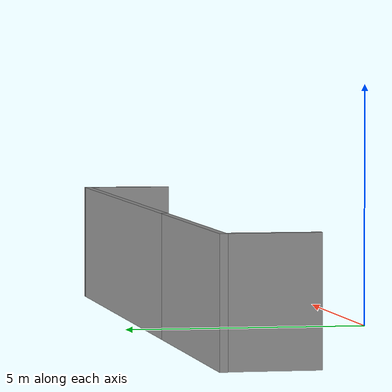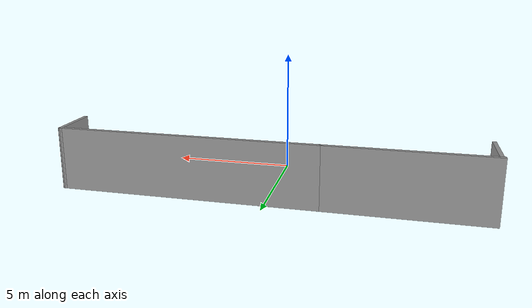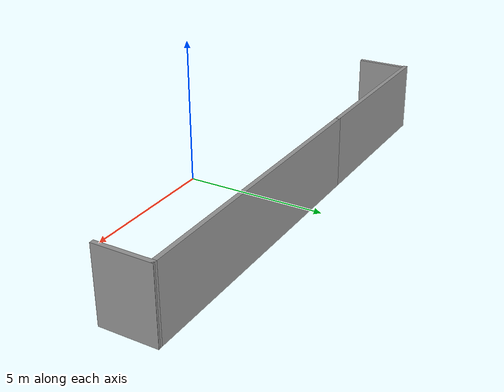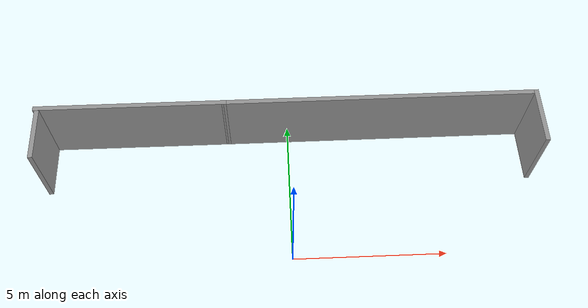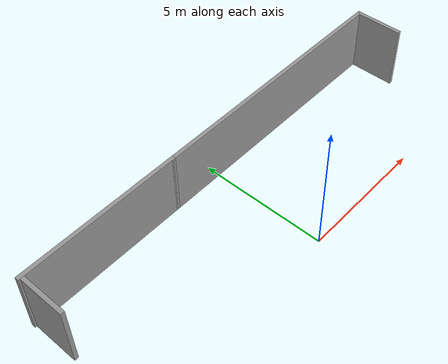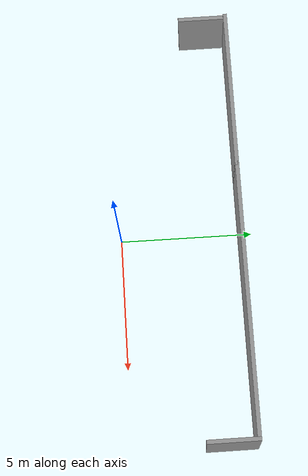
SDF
<?xml version='1.0'?>
<sdf version='1.7'>
  <model name='20240614world'>
    <model name='new_20240614'>
      <pose>3e-06 -1e-06 0 0 -0 0</pose>
      <link name='Wall_14'>
        <collision name='Wall_14_Collision'>
          <geometry>
            <box>
              <size>1.93003 0.15 2.5</size>
            </box>
          </geometry>
          <pose>0 0 1.25 0 -0 0</pose>
        </collision>
        <visual name='Wall_14_Visual'>
          <pose>0 0 1.25 0 -0 0</pose>
          <geometry>
            <box>
              <size>1.93003 0.15 2.5</size>
            </box>
          </geometry>
          <material>
            <script>
              <uri>file://media/materials/scripts/gazebo.material</uri>
              <name>Gazebo/Grey</name>
            </script>
            <ambient>1 1 1 1</ambient>
          </material>
          <meta>
            <layer>0</layer>
          </meta>
        </visual>
        <pose>8.165 3.66246 0 0 -0 -1.5708</pose>
      </link>
      <link name='Wall_17'>
        <collision name='Wall_17_Collision'>
          <geometry>
            <box>
              <size>6.25 0.15 2.5</size>
            </box>
          </geometry>
          <pose>0 0 1.25 0 -0 0</pose>
        </collision>
        <visual name='Wall_17_Visual'>
          <pose>0 0 1.25 0 -0 0</pose>
          <geometry>
            <box>
              <size>6.25 0.15 2.5</size>
            </box>
          </geometry>
          <material>
            <script>
              <uri>file://media/materials/scripts/gazebo.material</uri>
              <name>Gazebo/Grey</name>
            </script>
            <ambient>1 1 1 1</ambient>
          </material>
          <meta>
            <layer>0</layer>
          </meta>
        </visual>
        <pose>-5.115 4.54246 0 0 -0 3.14159</pose>
      </link>
      <link name='Wall_19'>
        <collision name='Wall_19_Collision'>
          <geometry>
            <box>
              <size>1.75 0.15 2.5</size>
            </box>
          </geometry>
          <pose>0 0 1.25 0 -0 0</pose>
        </collision>
        <visual name='Wall_19_Visual'>
          <pose>0 0 1.25 0 -0 0</pose>
          <geometry>
            <box>
              <size>1.75 0.15 2.5</size>
            </box>
          </geometry>
          <material>
            <script>
              <uri>file://media/materials/scripts/gazebo.material</uri>
              <name>Gazebo/Grey</name>
            </script>
            <ambient>1 1 1 1</ambient>
          </material>
          <meta>
            <layer>0</layer>
          </meta>
        </visual>
        <pose>-8.10187 3.58909 0 0 -0 1.5708</pose>
      </link>
      <link name='Wall_5'>
        <collision name='Wall_5_Collision'>
          <geometry>
            <box>
              <size>10.37 0.15 2.5</size>
            </box>
          </geometry>
          <pose>0 0 1.25 0 -0 0</pose>
        </collision>
        <visual name='Wall_5_Visual'>
          <pose>0 0 1.25 0 -0 0</pose>
          <geometry>
            <box>
              <size>10.37 0.15 2.5</size>
            </box>
          </geometry>
          <material>
            <script>
              <uri>file://media/materials/scripts/gazebo.material</uri>
              <name>Gazebo/Grey</name>
            </script>
            <ambient>1 1 1 1</ambient>
          </material>
          <meta>
            <layer>0</layer>
          </meta>
        </visual>
        <pose>3.045 4.54746 0 0 -0 0.000978</pose>
      </link>
      <static>1</static>
    </model>
    <static>0</static>
    <allow_auto_disable>1</allow_auto_disable>
  </model>
</sdf>
